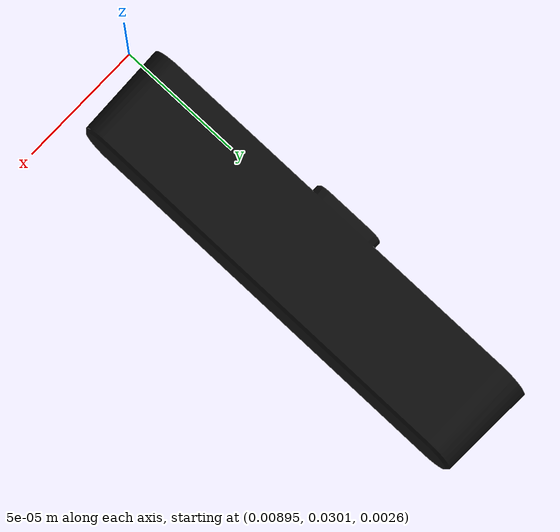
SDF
<?xml version="1.0"?>
<sdf version="1.10">
  <model name="zed2i">
    <static>false</static>
    <link name="zed_base_link">
      <inertial>
        <mass>0.2</mass>
        <inertia>
          <ixx>0.0001</ixx><iyy>0.0001</iyy><izz>0.0001</izz>
          <ixy>0</ixy><ixz>0</ixz><iyz>0</iyz>
        </inertia>
      </inertial>

      <visual name="visual">
        <pose>0.00897 0.03020 0.00262 0 0 0</pose>
        <geometry>
          <mesh>
            <uri>model://zed2i/meshes/zed2i.stl</uri>
            <scale>0.001 0.001 0.001</scale>
          </mesh>
        </geometry>
        <material>
          <ambient>0.02 0.02 0.02 1</ambient>
          <diffuse>0.05 0.05 0.05 1</diffuse>
          <specular>0.15 0.15 0.15 1</specular>
        </material>
      </visual>
      <sensor name="imu" type="imu">
        <always_on>true</always_on>
        <update_rate>200</update_rate>
        <topic>/ltu_zed2i_1/imu</topic>
      </sensor>
    </link>

    <link name="camera_link">
      <inertial>
        <mass>0.001</mass>
        <inertia>
          <ixx>1e-3</ixx><iyy>1e-3</iyy><izz>1e-3</izz>
          <ixy>0</ixy><ixz>0</ixz><iyz>0</iyz>
        </inertia>
      </inertial>

      <sensor name="zed2i_rgbd" type="rgbd_camera">
        <pose>0 0 0 0 0 -1.57</pose>
        <always_on>true</always_on>
        <visualize>true</visualize>
        <update_rate>30</update_rate>
        <topic>/ltu_zed2i_1</topic>
        <camera>
          <horizontal_fov>1.91986</horizontal_fov>
          <image>
            <width>1280</width>
            <height>720</height>
            <format>R8G8B8</format>
          </image>
          <clip>
            <near>0.15</near>
            <far>100.0</far>
          </clip>
        </camera>
      </sensor>
    </link>
    <joint name="camera_joint" type="fixed">
      <parent>zed_base_link</parent>
      <child>camera_link</child>
    </joint>
    <frame name="camera_optical_frame" attached_to="camera_link">
      <pose>0 0 0 -1.57079632679 0 -1.57079632679</pose>
    </frame>
  </model>
</sdf>
